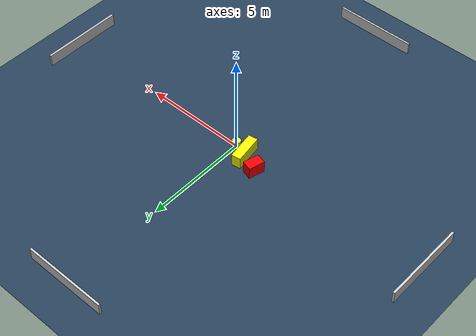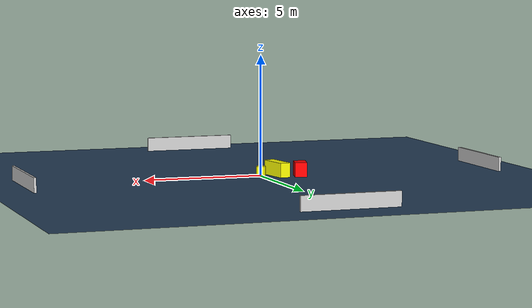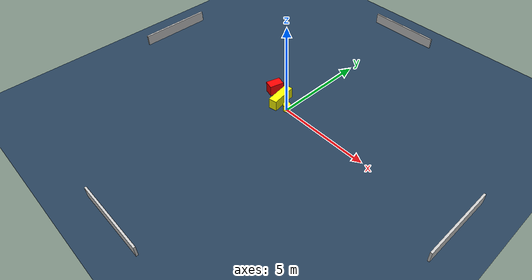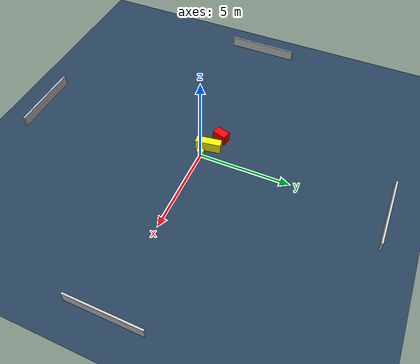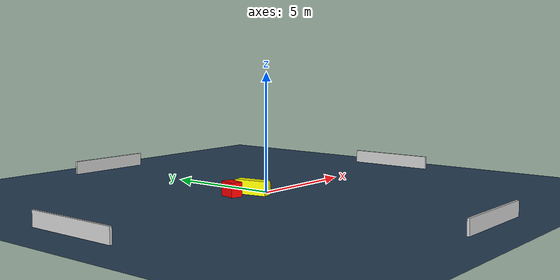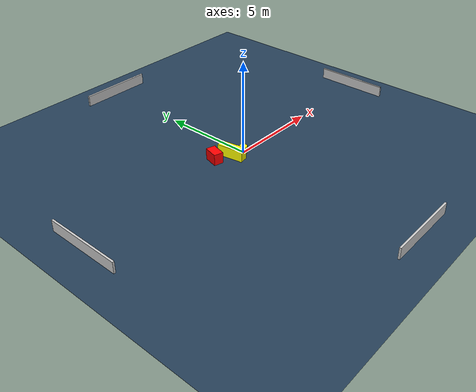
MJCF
<?xml version="1.0" ?>
<mujoco model="generated_environment">
  <option timestep="0.01" integrator="RK4" cone="elliptic"/>
  <default>
    <geom density="1"/>
  </default>
  <asset>
    <texture builtin="gradient" height="3072" name="skybox" rgb1="0.3 0.5 0.7" rgb2="0 0 0" type="skybox" width="512"/>
    <texture builtin="checker" height="300" name="groundplane" rgb1="0.2 0.3 0.4" rgb2="0.1 0.2 0.3" type="2d" width="300"/>
    <material name="groundplane" reflectance="0.2" texrepeat="5 5" texture="groundplane"/>
  </asset>
  <worldbody>
    <light dir="0 0 -1" directional="true" pos="0 0 1.5"/>
    <geom condim="3" friction="0.5 0.005 0.001" material="groundplane" name="floor" pos="0 0 0" size="0 0 0.05" type="plane"/>
    <body name="walls">
      <geom name="wall_1" condim="4" pos="-10.0 0.0 0.3" rgba="0.800000011920929 0.800000011920929 0.800000011920929 1.0" size="0.05 2.0 0.3" type="box"/>
      <geom name="wall_2" condim="4" pos="10.0 0.0 0.3" rgba="0.800000011920929 0.800000011920929 0.800000011920929 1.0" size="0.05 2.0 0.3" type="box"/>
      <geom name="wall_3" condim="4" pos="0.0 -10.0 0.3" rgba="0.800000011920929 0.800000011920929 0.800000011920929 1.0" size="2.0 0.05 0.3" type="box"/>
      <geom name="wall_4" condim="4" pos="0.0 10.0 0.3" rgba="0.800000011920929 0.800000011920929 0.800000011920929 1.0" size="2.0 0.05 0.3" type="box"/>
    </body>
    <body name="robot">
      <joint name="joint_x" type="slide" pos="0 0 0" axis="1 0 0"/>
      <joint name="joint_y" type="slide" pos="0 0 0" axis="0 1 0"/>
      <geom name="robot" type="cylinder" pos="0.0 0.0 0.2" size="0.2 0.2 0.0" mass="5.0" friction="1.0 0.005 0.0001" condim="4" rgba="1.0 1.0 0.0 1.0"/>
    </body>
    <body name="obstacle_1_movable">
      <geom name="obstacle_1_movable" condim="4" pos="-0.6532287692442149 0.19706009697327784 0.3" euler="0 0 9.070550167630639" friction="0.0 0.005 0.001" rgba="1.0 1.0 0.0 1.0" size="0.22565449645220875 0.7001991776099616 0.3" type="box" mass="0.1"/>
      <joint type="free"/>
    </body>
    <body name="obstacle_2_static">
      <geom name="obstacle_2_static" condim="4" pos="-1.5206259602289591 0.5784275236989298 0.3" euler="0 0 254.79697436341306" friction="0.0 0.005 0.001" rgba="1.0 0.0 0.0 1.0" size="0.38597766933399874 0.24949375256673598 0.3" type="box"/>
    </body>
  </worldbody>
  <actuator>
    <motor name="actuator_x" joint="joint_x" gear="1" ctrlrange="-1 1"/>
    <motor name="actuator_y" joint="joint_y" gear="1" ctrlrange="-1 1"/>
  </actuator>
</mujoco>
